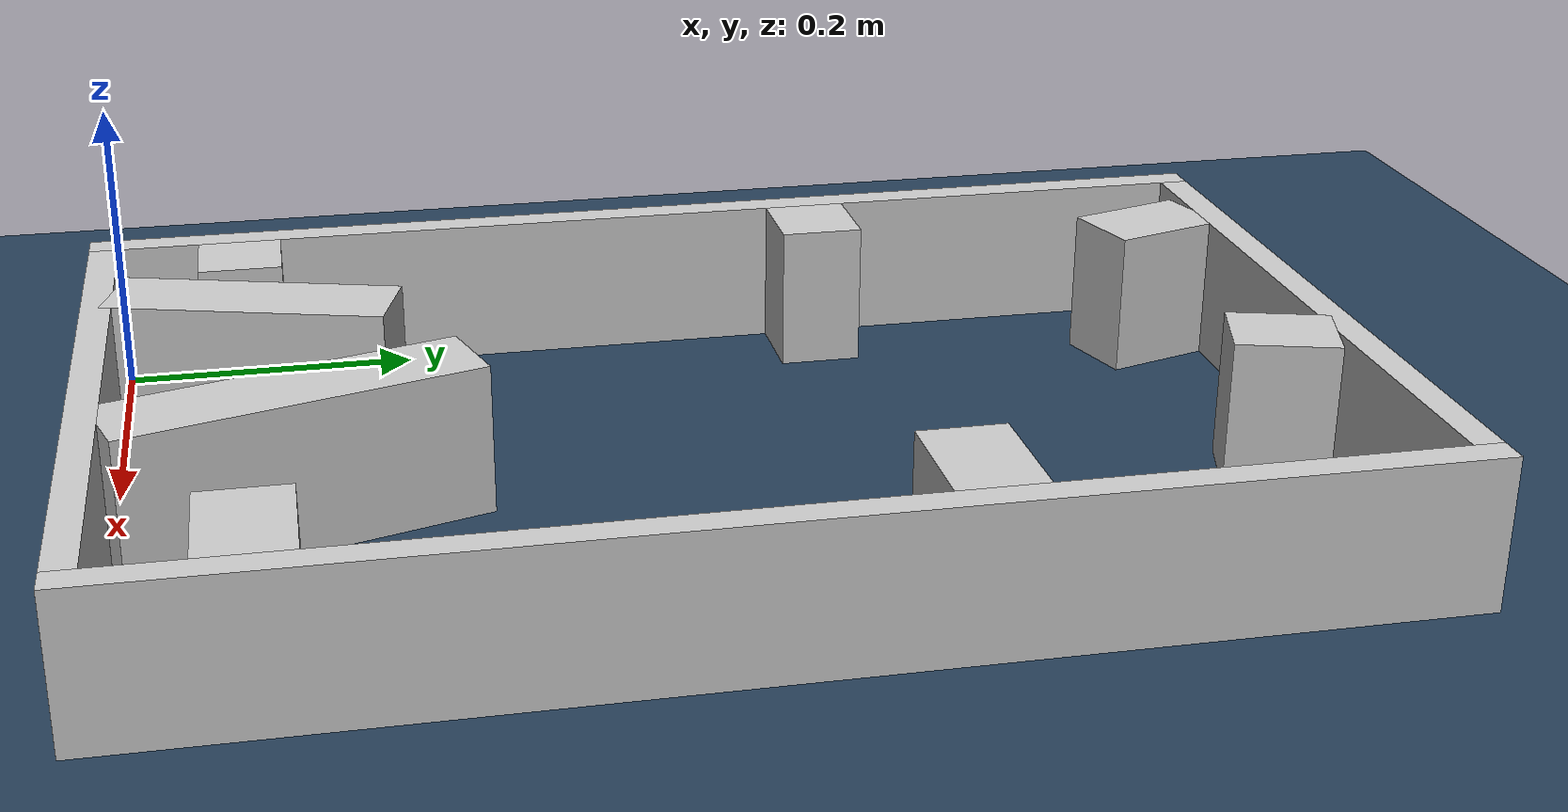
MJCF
<?xml version="1.0" ?>
<mujoco model="generated_real_template">
  <compiler angle="degree"/>
  <option timestep="0.002" integrator="implicitfast" iterations="100" cone="elliptic"/>
  <default>
    <geom density="1"/>
  </default>
  <asset>
    <texture builtin="gradient" height="3072" rgb1="0.3 0.5 0.7" rgb2="0 0 0" type="skybox" width="512"/>
    <texture builtin="checker" height="300" mark="edge" markrgb="0.8 0.8 0.8" name="groundplane" rgb1="0.2 0.3 0.4" rgb2="0.1 0.2 0.3" type="2d" width="300"/>
    <material name="groundplane" reflectance="0.2" texrepeat="5 5" texture="groundplane" texuniform="true"/>
  </asset>
  <worldbody>
    <light dir="0 0 -1" directional="true" pos="0 0 1.5"/>
    <geom name="floor" type="plane" condim="4" friction="0.5 0.005 0.001" material="groundplane" size="0 0 0.05"/>
    <body name="walls">
      <geom name="wall_boundary_left" type="box" condim="4" friction="1.0 0.005 0.0001" rgba="0.8 0.8 0.8 1" pos="-0.010000 0.387500 0.050000" euler="0 0 0.000000" size="0.010000 0.407500 0.050000"/>
      <geom name="wall_boundary_right" type="box" condim="4" friction="1.0 0.005 0.0001" rgba="0.8 0.8 0.8 1" pos="0.500000 0.387500 0.050000" euler="0 0 0.000000" size="0.010000 0.407500 0.050000"/>
      <geom name="wall_boundary_bottom" type="box" condim="4" friction="1.0 0.005 0.0001" rgba="0.8 0.8 0.8 1" pos="0.245000 -0.010000 0.050000" euler="0 0 0.000000" size="0.245000 0.010000 0.050000"/>
      <geom name="wall_boundary_top" type="box" condim="4" friction="1.0 0.005 0.0001" rgba="0.8 0.8 0.8 1" pos="0.245000 0.785000 0.050000" euler="0 0 0.000000" size="0.245000 0.010000 0.050000"/>
      <geom name="wall_inner_1_1" type="box" condim="4" friction="1.0 0.005 0.0001" rgba="0.8 0.8 0.8 1" pos="0.028675 0.083786 0.050000" euler="0 0 0.000000" size="0.028675 0.028500 0.050000"/>
      <geom name="wall_inner_1_2" type="box" condim="4" friction="1.0 0.005 0.0001" rgba="0.8 0.8 0.8 1" pos="0.449692 0.083786 0.050000" euler="0 0 0.000000" size="0.040308 0.028500 0.050000"/>
      <geom name="wall_inner_2_1" type="box" condim="4" friction="1.0 0.005 0.0001" rgba="0.8 0.8 0.8 1" pos="0.270735 0.113412 0.050000" euler="0 0 107.099156" size="0.118657 0.028500 0.050000"/>
      <geom name="wall_inner_2_2" type="box" condim="4" friction="1.0 0.005 0.0001" rgba="0.8 0.8 0.8 1" pos="0.079717 0.734360 0.050000" euler="0 0 107.099156" size="0.042519 0.028500 0.050000"/>
      <geom name="wall_inner_3_1" type="box" condim="4" friction="1.0 0.005 0.0001" rgba="0.8 0.8 0.8 1" pos="0.111863 0.091526 0.050000" euler="0 0 73.716979" size="0.095350 0.028500 0.050000"/>
      <geom name="wall_inner_3_2" type="box" condim="4" friction="1.0 0.005 0.0001" rgba="0.8 0.8 0.8 1" pos="0.301873 0.742025 0.050000" euler="0 0 73.716979" size="0.034353 0.028500 0.050000"/>
      <geom name="wall_inner_4_1" type="box" condim="4" friction="1.0 0.005 0.0001" rgba="0.8 0.8 0.8 1" pos="0.030175 0.494951 0.050000" euler="0 0 0.000000" size="0.030175 0.028500 0.050000"/>
      <geom name="wall_inner_4_2" type="box" condim="4" friction="1.0 0.005 0.0001" rgba="0.8 0.8 0.8 1" pos="0.449198 0.494951 0.050000" euler="0 0 0.000000" size="0.040802 0.028500 0.050000"/>
    </body>
  </worldbody>
</mujoco>
